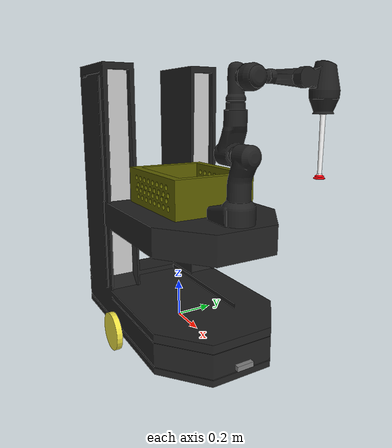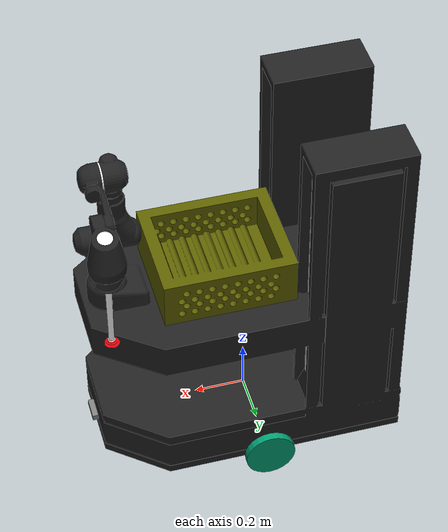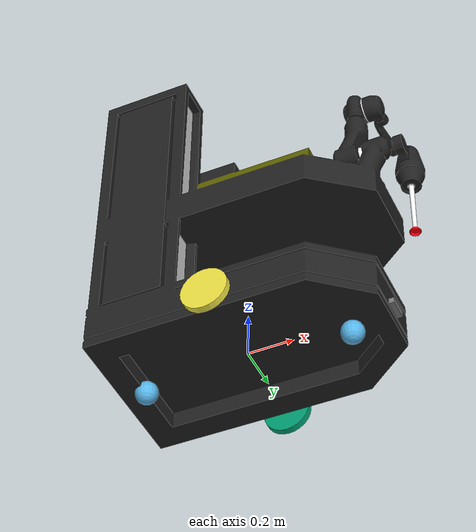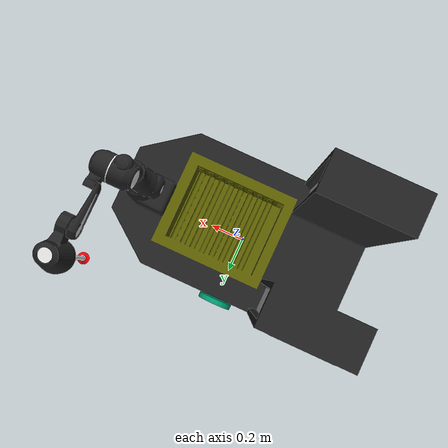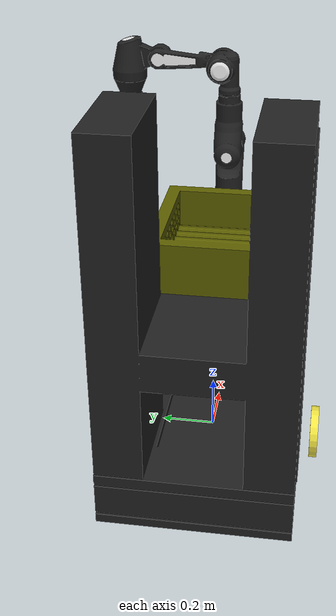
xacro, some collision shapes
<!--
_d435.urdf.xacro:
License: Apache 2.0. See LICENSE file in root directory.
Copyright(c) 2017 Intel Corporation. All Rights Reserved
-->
<?xml version='1.0'?>

<robot name="robot"
  xmlns:xacro="http://www.ros.org/wiki/xacro">

  <xacro:include filename="$(find outr_description)/urdf/outr.gazebo" />
  <xacro:include filename="$(find outr_description)/urdf/materials.xacro" />
  <xacro:include filename="$(find outr_description)/urdf/macros.xacro" />
  <xacro:include filename="$(find outr_description)/urdf/_d435.urdf.xacro"/>

  <link name="base_link" />

  <link name='chassis'>
    <pose>0 0 0 0 0 0</pose>

    <inertial>
      <mass value="10.0"/>
      <origin xyz="0.15 0 -0.15" rpy=" 0 0 3.14159"/>
      <inertia ixx="1.0" ixy="0" ixz="0" iyy="1.0" iyz="0" izz="1.0" />
    </inertial>

    <collision name='collision'>
      <origin xyz="0.15 0 -0.15" rpy=" 0 0 3.14159"/>
      <geometry>
        <mesh filename="package://outr_description/urdf/outr.dae"/>
      </geometry>
    </collision>

    <visual name='chassis_visual'>
      <origin xyz="0.15 0 -0.15" rpy=" 0 0 3.14159"/>
      <geometry>
        <mesh filename="package://outr_description/urdf/outr.dae"/>
      </geometry>
    </visual>

    <collision name='caster1_collision'>
      <origin xyz="0.45 0 -0.05" rpy=" 0 0 0"/>
      <geometry>
        <sphere radius="0.05"/>
      </geometry>
      <surface>
        <friction>
          <ode>
            <mu>0</mu>
            <mu2>0</mu2>
            <slip1>1.0</slip1>
            <slip2>1.0</slip2>
          </ode>
        </friction>
      </surface>
    </collision>

    <visual name='caster1_visual'>
      <origin xyz="0.45 0 -0.05" rpy=" 0 0 0"/>
      <geometry>
        <sphere radius="0.05"/>
      </geometry>
    </visual>

    <collision name='caster2_collision'>
      <origin xyz="-0.45 0 -0.05" rpy=" 0 0 0"/>
      <geometry>
        <sphere radius="0.05"/>
      </geometry>
      <surface>
        <friction>
          <ode>
            <mu>0</mu>
            <mu2>0</mu2>
            <slip1>1.0</slip1>
            <slip2>1.0</slip2>
          </ode>
        </friction>
      </surface>
    </collision>

    <visual name='caster2_visual'>
      <origin xyz="-0.45 0 -0.05" rpy=" 0 0 0"/>
      <geometry>
        <sphere radius="0.05"/>
      </geometry>
    </visual>
  </link>

  <link name="left_wheel">
    <collision name="collision">
      <origin xyz="0 0 0" rpy="0 1.5707 1.5707"/>
      <geometry>
        <cylinder radius="0.1" length="0.03"/>
      </geometry>
    </collision>
    <visual name="left_wheel_visual">
      <origin xyz="0 0 0" rpy="0 1.5707 1.5707"/>
      <geometry>
        <cylinder radius="0.1" length="0.03"/>
      </geometry>
    </visual>
    <inertial>
      <origin xyz="0 0 0" rpy="0 1.5707 1.5707"/>
      <mass value="5"/>
      <cylinder_inertia m="5" r="0.1" h="0.03"/>
      <inertia ixx="1.0" ixy="0.0" ixz="0.0" iyy="1.0" iyz="0.0" izz="1.0"/>
    </inertial>
  </link>

  <link name="right_wheel">
    <collision name="collision">
      <origin xyz="0 0 0" rpy="0 1.5707 1.5707"/>
      <geometry>
        <cylinder radius="0.1" length="0.03"/>
      </geometry>
    </collision>
    <visual name="right_wheel_visual">
      <origin xyz="0 0 0" rpy="0 1.5707 1.5707"/>
      <geometry>
        <cylinder radius="0.1" length="0.03"/>
      </geometry>
    </visual>
    <inertial>
      <origin xyz="0 0 0" rpy="0 1.5707 1.5707"/>
      <mass value="5"/>
      <cylinder_inertia m="5" r="0.1" h="0.03"/>
      <inertia ixx="1.0" ixy="0.0" ixz="0.0" iyy="1.0" iyz="0.0" izz="1.0"/>
    </inertial>
  </link>

  <gazebo reference="right_wheel">
    <material>WheelMaterial</material>
  </gazebo>
  <gazebo reference="left_wheel">
    <material>WheelMaterial</material>
  </gazebo>

  <joint name="base_link_to_chassis" type="fixed">
    <parent link="base_link"/>
    <child link="chassis"/>
  </joint>

  <joint type="continuous" name="left_wheel_hinge">
    <origin xyz="0 0.40 0" rpy="0 0 0"/>
    <child link="left_wheel"/>
    <parent link="chassis"/>
    <axis xyz="0 1 0" rpy="0 0 0"/>
    <limit effort="100000000" velocity="100000000"/>
    <joint_properties damping="0.0" friction="0.0"/>
  </joint>

  <joint type="continuous" name="right_wheel_hinge">
    <origin xyz="0 -0.40 0" rpy="0 0 0"/>
    <child link="right_wheel"/>
    <parent link="chassis"/>
    <axis xyz="0 1 0" rpy="0 0 0"/>
    <limit effort="100000000" velocity="100000000"/>
    <joint_properties damping="0.0" friction="0.0"/>
  </joint>

  <xacro:sensor_d435 parent="chassis">
    <origin xyz="0.63 0 0" rpy="0 0 0"/>
  </xacro:sensor_d435>

</robot>

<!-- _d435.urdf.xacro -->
<robot name="sensor_d435" xmlns:xacro="http://ros.org/wiki/xacro">
  <!--File includes-->
  <xacro:include filename="$(find outr_description)/urdf/_d435.gazebo.xacro"/>

  <xacro:macro name="sensor_d435" params="name:=camera topics_ns:=camera parent *origin">
    <xacro:property name="M_PI" value="3.1415926535897931" />

    <!-- The following values are approximate, and the camera node
     publishing TF values with actual calibrated camera extrinsic values -->
    <xacro:property name="d435_cam_depth_to_left_ir_offset" value="0.0"/>
    <xacro:property name="d435_cam_depth_to_right_ir_offset" value="-0.050"/>
    <xacro:property name="d435_cam_depth_to_color_offset" value="0.015"/>

    <!-- The following values model the aluminum peripherial case for the
  	D435 camera, with the camera joint represented by the actual
  	peripherial camera tripod mount -->
    <xacro:property name="d435_cam_width" value="0.090"/>
    <xacro:property name="d435_cam_height" value="0.025"/>
    <xacro:property name="d435_cam_depth" value="0.02505"/>
    <xacro:property name="d435_cam_mount_from_center_offset" value="0.0149"/>

    <!-- The following offset is relative the the physical D435 camera peripherial
  	camera tripod mount -->
    <xacro:property name="d435_cam_depth_px" value="${d435_cam_mount_from_center_offset}"/>
    <xacro:property name="d435_cam_depth_py" value="0.0175"/>
    <xacro:property name="d435_cam_depth_pz" value="${d435_cam_height/2}"/>

    <material name="${name}_aluminum">
	  <color rgba="0.5 0.5 0.5 1"/>
    </material>

    <!-- camera body, with origin at bottom screw mount -->
    <joint name="${name}_joint" type="fixed">
      <xacro:insert_block name="origin" />
      <parent link="${parent}"/>
      <child link="${name}_bottom_screw_frame" />
    </joint>
    <link name="${name}_bottom_screw_frame"/>

    <joint name="${name}_link_joint" type="fixed">
      <origin xyz="0 ${d435_cam_depth_py} ${d435_cam_depth_pz}" rpy="0 0 0"/>
      <parent link="${name}_bottom_screw_frame"/>
      <child link="${name}_link" />
    </joint>

    <link name="${name}_link">
      <visual>
      <origin xyz="${d435_cam_mount_from_center_offset} ${-d435_cam_depth_py} 0" rpy="${M_PI/2} 0 ${M_PI/2}"/>
        <geometry>
          <mesh filename="package://realsense2_description/meshes/d435.dae" />
        </geometry>
        <material name="${name}_aluminum"/>
      </visual>
      <collision>
        <origin xyz="0 ${-d435_cam_depth_py} 0" rpy="0 0 0"/>
        <geometry>
        <box size="${d435_cam_depth} ${d435_cam_width} ${d435_cam_height}"/>
        </geometry>
      </collision>
      <inertial>
        <!-- The following are not reliable values, and should not be used for modeling -->
        <mass value="0.564" />
        <origin xyz="0 0 0" />
        <inertia ixx="0.003881243" ixy="0.0" ixz="0.0" iyy="0.000498940" iyz="0.0" izz="0.003879257" />
      </inertial>
    </link>

    <!-- camera depth joints and links -->
    <joint name="${name}_depth_joint" type="fixed">
      <origin xyz="0 0 0" rpy="0 0 0"/>
      <parent link="${name}_link"/>
      <child link="${name}_depth_frame" />
    </joint>
    <link name="${name}_depth_frame"/>

    <joint name="${name}_depth_optical_joint" type="fixed">
      <origin xyz="0 0 0" rpy="${-M_PI/2} 0 ${-M_PI/2}" />
      <parent link="${name}_depth_frame" />
      <child link="${name}_depth_optical_frame" />
    </joint>
    <link name="${name}_depth_optical_frame"/>

    <!-- camera left IR joints and links -->
    <joint name="${name}_left_ir_joint" type="fixed">
      <origin xyz="0 ${d435_cam_depth_to_left_ir_offset} 0" rpy="0 0 0" />
      <parent link="${name}_depth_frame" />
      <child link="${name}_left_ir_frame" />
    </joint>
    <link name="${name}_left_ir_frame"/>

    <joint name="${name}_left_ir_optical_joint" type="fixed">
      <origin xyz="0 0 0" rpy="${-M_PI/2} 0 ${-M_PI/2}" />
      <parent link="${name}_left_ir_frame" />
      <child link="${name}_left_ir_optical_frame" />
    </joint>
    <link name="${name}_left_ir_optical_frame"/>

    <!-- camera right IR joints and links -->
    <joint name="${name}_right_ir_joint" type="fixed">
      <origin xyz="0 ${d435_cam_depth_to_right_ir_offset} 0" rpy="0 0 0" />
      <parent link="${name}_depth_frame" />
      <child link="${name}_right_ir_frame" />
    </joint>
    <link name="${name}_right_ir_frame"/>

    <joint name="${name}_right_ir_optical_joint" type="fixed">
      <origin xyz="0 0 0" rpy="${-M_PI/2} 0 ${-M_PI/2}" />
      <parent link="${name}_right_ir_frame" />
      <child link="${name}_right_ir_optical_frame" />
    </joint>
    <link name="${name}_right_ir_optical_frame"/>

    <!-- camera color joints and links -->
    <joint name="${name}_color_joint" type="fixed">
      <origin xyz="0 ${d435_cam_depth_to_color_offset} 0" rpy="0 0 0" />
      <parent link="${name}_depth_frame" />
      <child link="${name}_color_frame" />
    </joint>
    <link name="${name}_color_frame"/>

    <joint name="${name}_color_optical_joint" type="fixed">
      <origin xyz="0 0 0" rpy="${-M_PI/2} 0 ${-M_PI/2}" />
      <parent link="${name}_color_frame" />
      <child link="${name}_color_optical_frame" />
    </joint>
    <link name="${name}_color_optical_frame"/>

    <!-- Realsense Gazebo Plugin -->
    <xacro:gazebo_d435 camera_name="${name}" reference_link="${name}_link" topics_ns="${topics_ns}" depth_optical_frame="${name}_depth_optical_frame" color_optical_frame="${name}_color_optical_frame" infrared1_optical_frame="${name}_left_ir_optical_frame" infrared2_optical_frame="${name}_right_ir_optical_frame"/>

  </xacro:macro>
</robot>
